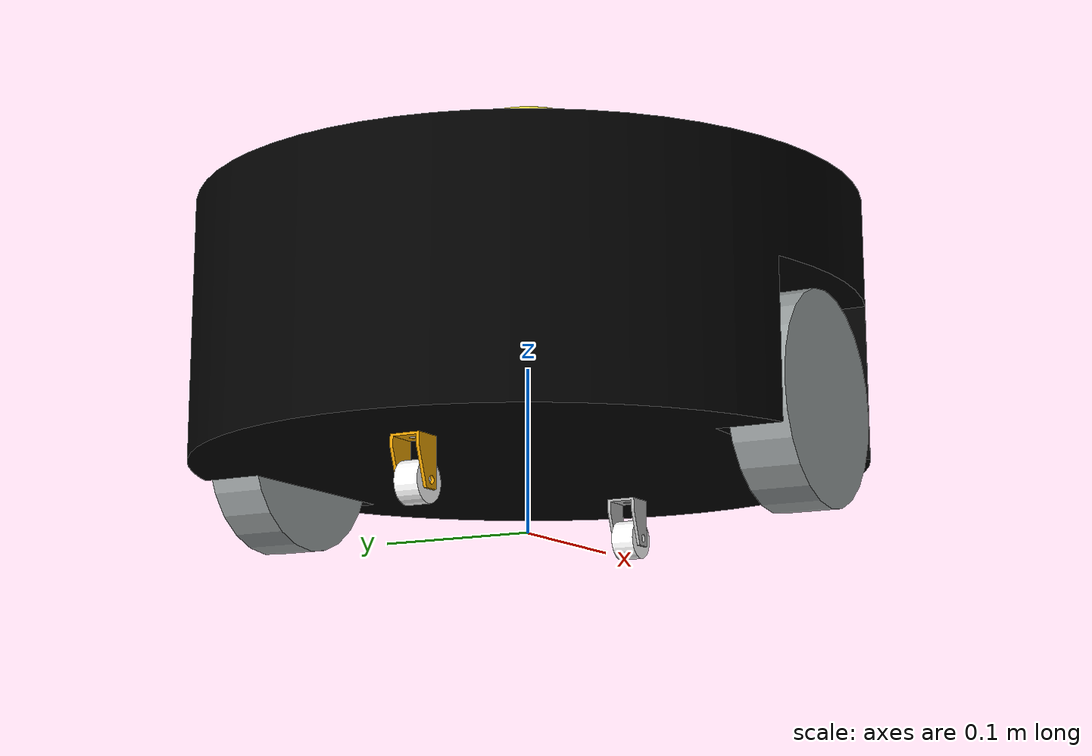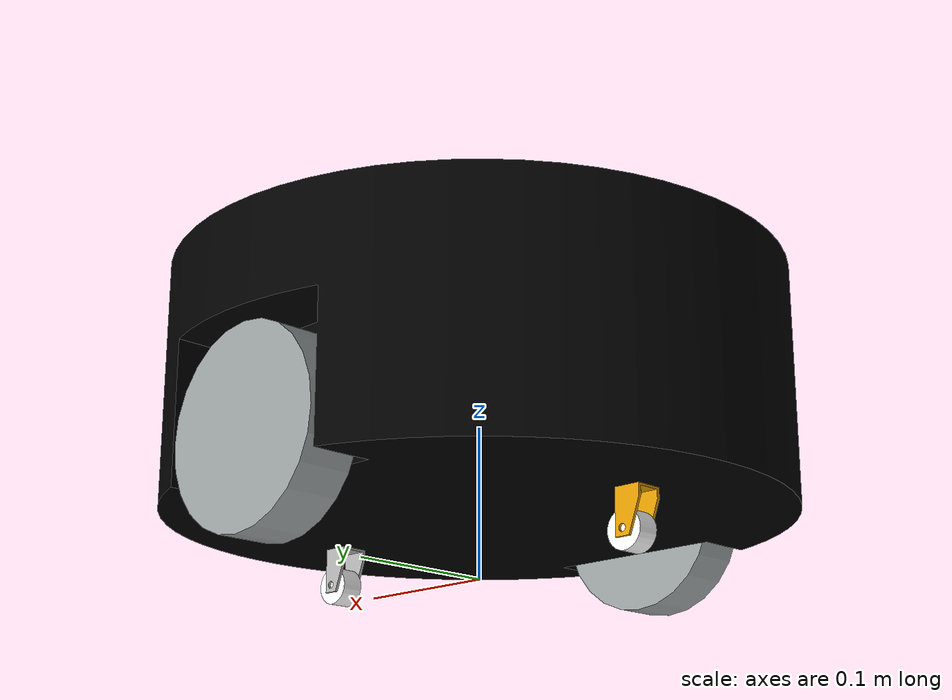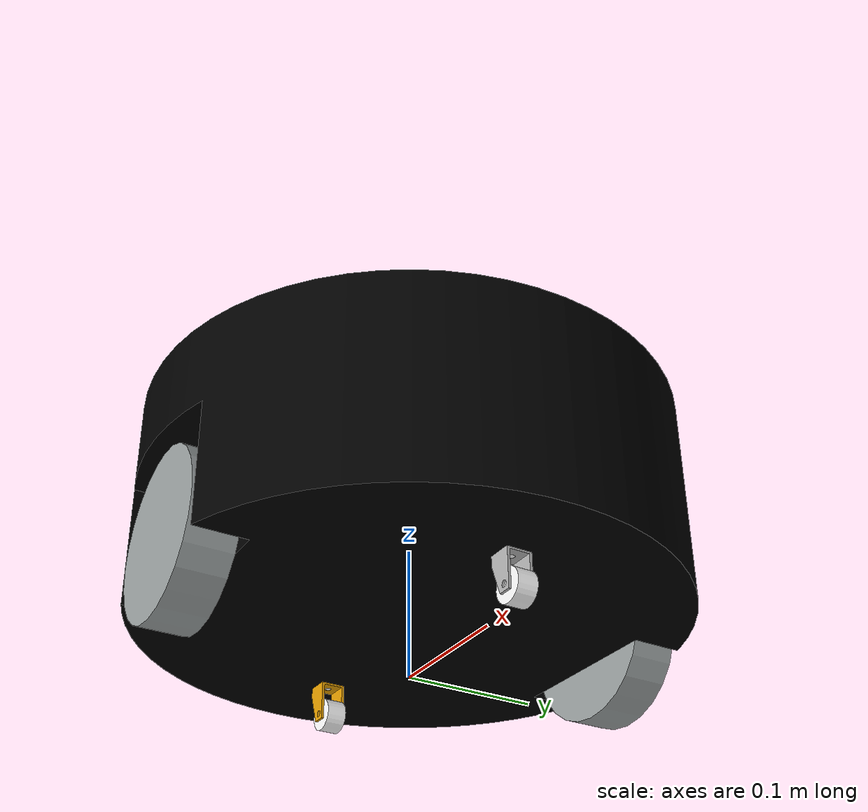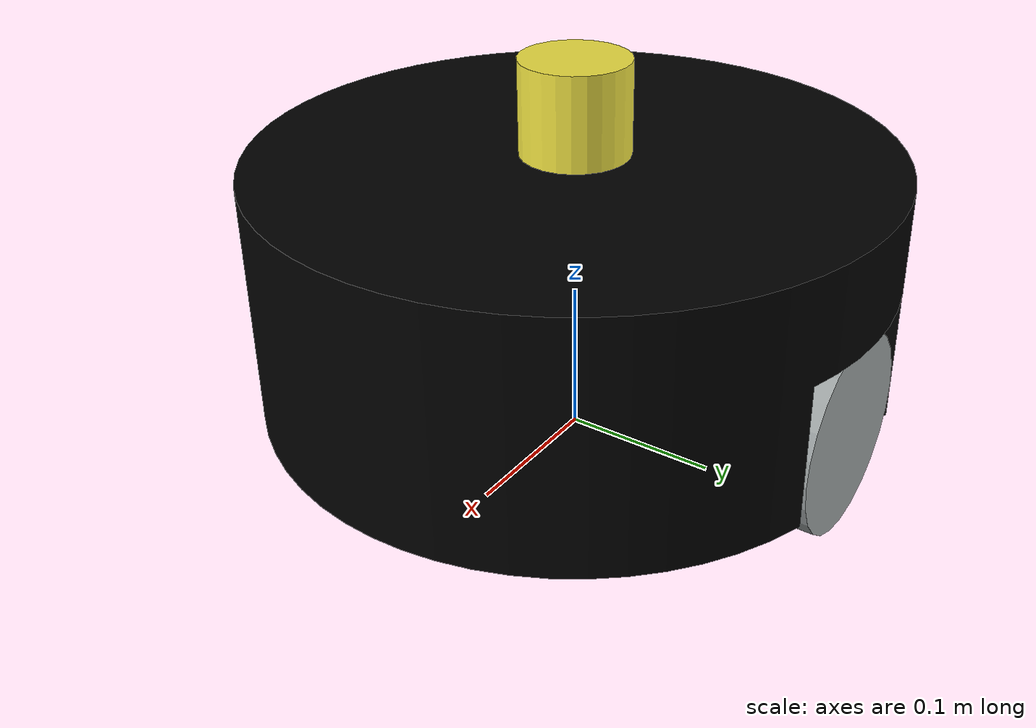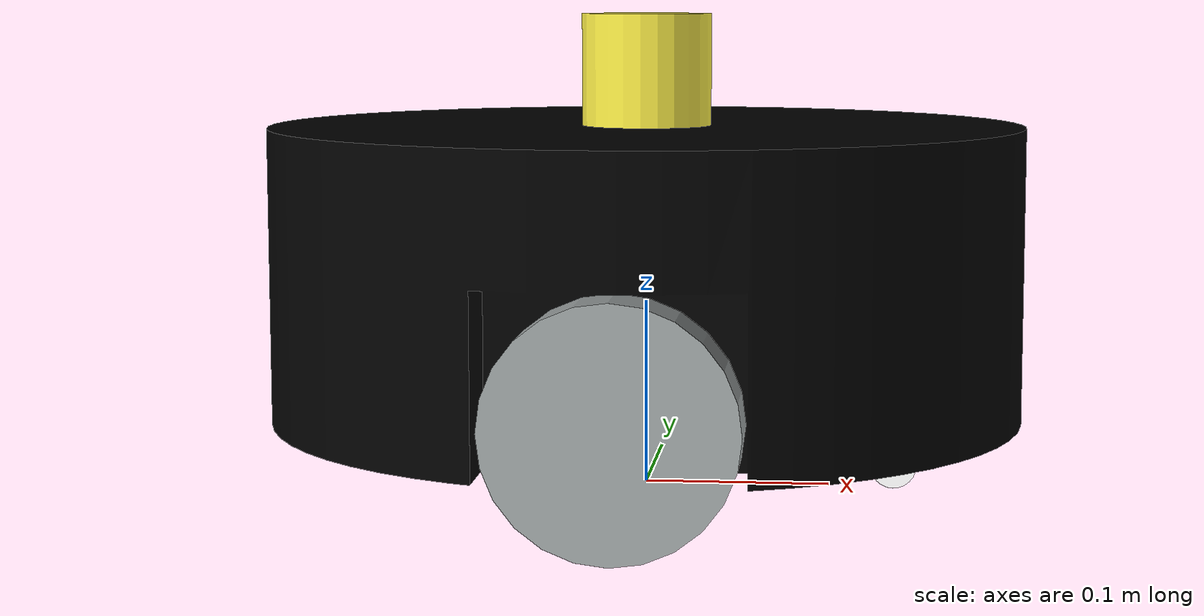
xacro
<?xml version="1.0"?>
<robot name="mbot" xmlns:xacro="http://www.ros.org/wiki/xacro">

  <!-- Gazebo: Color & Sensor -->
  <xacro:include filename="$(find model)/urdf/mbotModel.gazebo" />

  <!-- COLOR -->
  <material name="black">
    <color rgba="0 0 0 1"/>
  </material>

  <material name="gray">
    <color rgba="0.609 0.633 0.634 1.0"/>
  </material>

  <material name="white">
    <color rgba="1.0 1.0 1.0 1.0"/>
  </material>

  <!-- links -->
  <link name="base_link">
  </link>
  <link name="base_footprint">
  </link>

  <link name="body_link">
    <visual>
      <geometry>
        <mesh filename="package://model/meshes/dashgoD1_body.stl"/>
      </geometry>
      <origin rpy="0 3.14159265359 1.57079632679" xyz="0.203 0.203 0.196 "/>
      <material name="black"/>
    </visual>
    <collision>
      <geometry>
        <cylinder length="0.158" radius="0.203"/>
      </geometry>
      <origin rpy="0 0 0" xyz="0 0 0.117 "/>
    </collision>
    <inertial>
      <mass value="15.0"/>
      <inertia ixx="0.352" ixy="0.0" ixz="0.0" iyy="0.352" iyz="0.0" izz="0.309"/>
    </inertial>
  </link>

  <link name="left_leg">
    <visual>
      <geometry>
        <cylinder length="0.035" radius="0.0625"/>
      </geometry>
      <origin rpy="0 1.57079632679 0" xyz="0 0 0"/>
      <material name="gray"/>
    </visual>
    <collision>
      <geometry>
        <cylinder length="0.035" radius="0.0625"/>
      </geometry>
      <origin rpy="0 1.57079632679 0" xyz="0 0 0"/>
    </collision>
    <inertial>
      <mass value="10.0"/>
      <inertia ixx="0.01" ixy="0.0" ixz="0.0" iyy="0.01" iyz="0.0" izz="0.01"/>
    </inertial>
  </link>

  <link name="right_leg">
    <visual>
      <geometry>
        <cylinder length="0.035" radius="0.0625"/>
      </geometry>
      <origin rpy="0 1.57079632679 0" xyz="-0 0 0"/>
      <material name="gray"/>
    </visual>
    <collision>
      <geometry>
        <cylinder length="0.035" radius="0.0625"/>
      </geometry>
      <origin rpy="0 1.57079632679 0" xyz="-0 0 0"/>
    </collision>
    <inertial>
      <mass value="10.0"/>
      <inertia ixx="0.01" ixy="0.0" ixz="0.0" iyy="0.01" iyz="0.0" izz="0.01"/>
    </inertial>
  </link>

  <link name="front_support_of_steering_wheel_frame">
    <visual>
      <geometry>
        <cylinder radius="0.0025" length="0.0025"/>
      </geometry>
      <origin rpy="0 0 0" xyz="0 0 0"/>
      <material name="white"/>
    </visual>
    <collision>
      <geometry>
        <cylinder radius="0.0025" length="0.0025"/>
      </geometry>
      <origin rpy="0 0 0" xyz="0 0 0"/>
    </collision>
    <inertial>
      <mass value="1.0"/>
      <inertia ixx="0.01" ixy="0.0" ixz="0.0" iyy="0.01" iyz="0.0" izz="0.01"/>
    </inertial>
  </link>

  <link name="back_support_of_steering_wheel_frame">
    <visual>
      <geometry>
        <cylinder radius="0.0025" length="0.0025"/>
      </geometry>
      <origin rpy="0 0 0" xyz="0 0 0"/>
      <material name="white"/>
    </visual>
    <collision>
      <geometry>
        <cylinder radius="0.0025" length="0.0025"/>
      </geometry>
      <origin rpy="0 0 0" xyz="0 0 0"/>
    </collision>
    <inertial>
      <mass value="1.0"/>
      <inertia ixx="0.01" ixy="0.0" ixz="0.0" iyy="0.01" iyz="0.0" izz="0.01"/>
    </inertial>
  </link>

  <link name="front_steering_wheel_frame">
    <visual>
      <geometry>
        <mesh filename="package://model/meshes/dashgoD1_steering_wheel_frame.stl"/>
      </geometry>
      <origin rpy="1.57079632679 0 1.57079632679" xyz="-0.0095 -0.017 -0.0375"/>
    </visual>
    <collision>
      <geometry>
        <mesh filename="package://model/meshes/dashgoD1_steering_wheel_frame.stl"/>
      </geometry>
      <origin rpy="1.57079632679 0 1.57079632679" xyz="-0.0095 -0.017 -0.0375"/>
    </collision>
    <inertial>
      <mass value="1.0"/>
      <inertia ixx="0.01" ixy="0.0" ixz="0.0" iyy="0.01" iyz="0.0" izz="0.01"/>
    </inertial>
  </link>

  <link name="back_steering_wheel_frame">
    <visual>
      <geometry>
        <mesh filename="package://model/meshes/dashgoD1_steering_wheel_frame.stl"/>
      </geometry>
      <origin rpy="1.57079632679 0 1.57079632679" xyz="-0.0095 -0.017 -0.0375"/>
    </visual>
    <collision>
      <geometry>
        <mesh filename="package://model/meshes/dashgoD1_steering_wheel_frame.stl"/>
      </geometry>
      <origin rpy="1.57079632679 0 1.57079632679" xyz="-0.0095 -0.017 -0.0375"/>
    </collision>
    <inertial>
      <mass value="1.0"/>
      <inertia ixx="0.01" ixy="0.0" ixz="0.0" iyy="0.01" iyz="0.0" izz="0.01"/>
    </inertial>
  </link>

  <link name="front_steering_wheel">
    <visual>
      <geometry>
        <cylinder radius="0.0125" length="0.015"/>
      </geometry>
      <origin rpy="0 1.57079632679 0" xyz="0 0 0"/>
      <material name="white"/>
    </visual>
    <collision>
      <geometry>
        <cylinder radius="0.0125" length="0.015"/>
      </geometry>
      <origin rpy="0 1.57079632679 0" xyz="0 0 0"/>
    </collision>
    <inertial>
      <mass value="1.0"/>
      <inertia ixx="0.01" ixy="0.0" ixz="0.0" iyy="0.01" iyz="0.0" izz="0.01"/>
    </inertial>
  </link>

  <link name="back_steering_wheel">
    <visual>
      <geometry>
        <cylinder radius="0.0125" length="0.015"/>
      </geometry>
      <origin rpy="0 1.57079632679 0" xyz="0 0 0"/>
      <material name="white"/>
    </visual>
    <collision>
      <geometry>
        <cylinder radius="0.0125" length="0.015"/>
      </geometry>
      <origin rpy="0 1.57079632679 0" xyz="0 0 0"/>
    </collision>
    <inertial>
      <mass value="1.0"/>
      <inertia ixx="0.01" ixy="0.0" ixz="0.0" iyy="0.01" iyz="0.0" izz="0.01"/>
    </inertial>
  </link>

  <link name="laser_frame">
    <visual>
      <geometry>
        <cylinder radius="0.035" length="0.060"/>
      </geometry>
      <origin xyz="0 0 0"/>
    </visual>
    <collision>
      <geometry>
        <cylinder radius="0.035" length="0.060"/>
      </geometry>
      <origin xyz="0 0 0"/>
    </collision>
    <inertial>
      <mass value="1.0"/>
      <inertia ixx="0.01" ixy="0.0" ixz="0.0" iyy="0.01" iyz="0.0" izz="0.01"/>
    </inertial>
  </link>

  <link name="laser_sensor">
    <visual>
      <geometry>
        <box size="0.01 0.01 0.01"/>
      </geometry>
      <origin xyz="0.0 0.0 0.0" rpy="0.0 0.0 0.0"/>
    </visual>
    <collision>
      <geometry>
        <box size="0.01 0.01 0.01"/>
      </geometry>
      <origin xyz="0.0 0.0 0.0" rpy="0.0 0.0 0.0"/>
    </collision>
    <inertial>
      <mass value="1e-5" />
      <origin xyz="0 0 0" rpy="0 0 0"/>
      <inertia ixx="1e-6" ixy="0" ixz="0" iyy="1e-6" iyz="0" izz="1e-6" />>
    </inertial>
  </link>

  <!-- joints -->
  <joint name="base_to_body" type="fixed">
     <parent link="base_link"/>
     <child link="body_link"/>
     <origin xyz="0 0 0" rpy="0 0 1.57079632679"/>
  </joint>

  <joint name="footprint_to_base" type="fixed">
     <parent link="base_footprint"/>
     <child link="base_link"/>
     <origin xyz="0 0 0" rpy="0 0 0"/>
  </joint>

  <joint name="left_motor" type="continuous">
    <parent link="body_link"/>
    <child link="left_leg"/>
    <origin xyz="0.17535 0 0.0625" rpy="0 0 0"/>
    <axis xyz="1 0 0"/>
    <dynamics damping="0.7"/>
  </joint>

  <joint name="right_motor" type="continuous">
    <parent link="body_link"/>
    <child link="right_leg"/>
    <origin xyz="-0.17535 0 0.0625" rpy="0 0 0"/>
    <axis xyz="1 0 0"/>
    <dynamics damping="0.7"/>
  </joint>

  <joint name="body_link_to_front_support_of_steering_wheel_frame" type="fixed">
    <parent link="body_link"/>
    <child link="front_support_of_steering_wheel_frame"/>
    <origin xyz="0 -0.130 0.038"/>
  </joint>

  <joint name="body_link_to_back_support_of_steering_wheel_frame" type="fixed">
    <parent link="body_link"/>
    <child link="back_support_of_steering_wheel_frame"/>
    <origin xyz="0 0.130 0.038"/>
  </joint>

  <joint name="front_support_to_front_steering_wheel_frame" type="fixed">
    <parent link="front_support_of_steering_wheel_frame"/>
    <child link="front_steering_wheel_frame"/>
    <origin xyz="0 0 0"/>
  </joint>

  <joint name="back_support_to_front_steering_wheel_frame" type="fixed">
    <parent link="back_support_of_steering_wheel_frame"/>
    <child link="back_steering_wheel_frame"/>
    <origin xyz="0 0 0"/>
  </joint>

  <joint name="front_steering_wheel_frame_to_wheel" type="fixed">
    <parent link="front_steering_wheel_frame"/>
    <child link="front_steering_wheel"/>
    <origin xyz="0.0 -0.005 -0.0255"/>
  </joint>

  <joint name="back_steering_wheel_frame_to_wheel" type="fixed">
    <parent link="back_steering_wheel_frame"/>
    <child link="back_steering_wheel"/>
    <origin xyz="0.0 -0.005 -0.0255"/>
  </joint>

  <joint name="body_link_to_laser_frame" type="fixed">
    <parent link="body_link"/>
    <child link="laser_frame"/>
    <origin xyz="0 0 0.226"/>
  </joint>

  <joint name="laser_frame_to_laser_sensor" type="fixed">
    <parent link="laser_frame"/>
    <child link="laser_sensor"/>
    <origin xyz="0.0 0.0 0.010" rpy="0.0 0.0 0.0" />
  </joint>

  <!-- transmissions -->
  <transmission name="tran1">
    <type>transmission_interface/SimpleTransmission</type>
    <joint name="left_motor">
      <hardwareInterface>hardware_interface/VelocityJointInterface</hardwareInterface>
    </joint>
    <actuator name="left_leg">
      <hardwareInterface>hardware_interface/VelocityJointInterface</hardwareInterface>
      <mechanicalReduction>1</mechanicalReduction>
    </actuator>
  </transmission>

  <transmission name="tran2">
    <type>transmission_interface/SimpleTransmission</type>
    <joint name="right_motor">
      <hardwareInterface>hardware_interface/VelocityJointInterface</hardwareInterface>
    </joint>
    <actuator name="right_leg">
      <hardwareInterface>hardware_interface/VelocityJointInterface</hardwareInterface>
      <mechanicalReduction>1</mechanicalReduction>
    </actuator>
  </transmission>
</robot>
